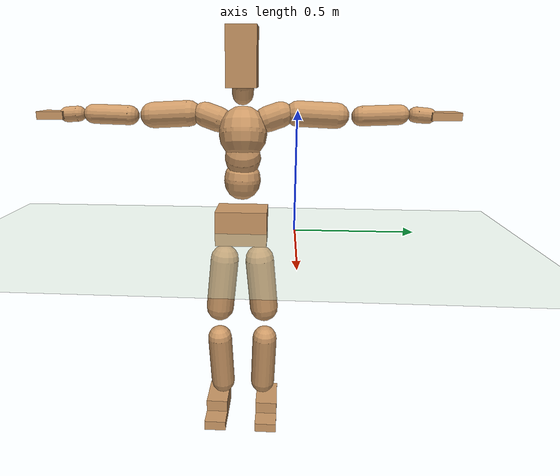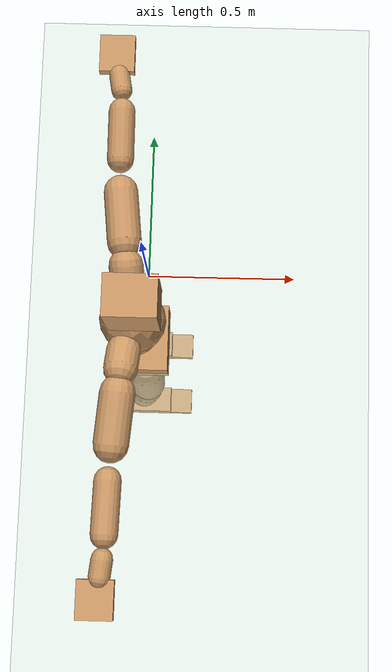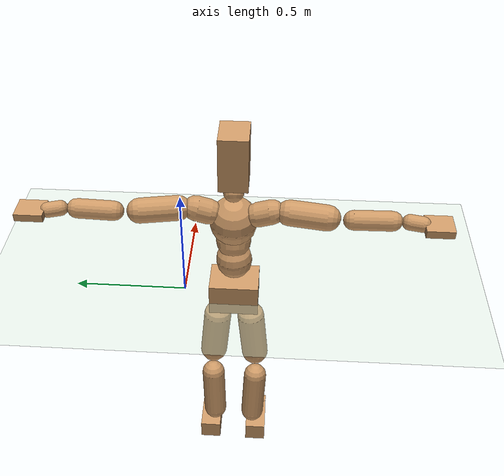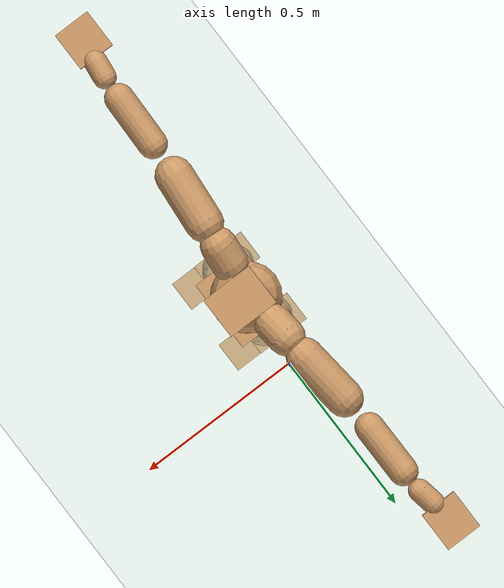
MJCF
<mujoco model="humanoid">
  <compiler coordinate="local" />
  <default>
    <joint damping="0.0" armature="0.01" stiffness="0.0" limited="true" />
    <geom conaffinity="1" condim="3" contype="7" margin="0.001" rgba="0.8 0.6 .4 1" />
  </default>
  <asset>
    <texture type="skybox" builtin="gradient" rgb1=".4 .5 .6" rgb2="0 0 0" width="100" height="100" />
    <texture builtin="flat" height="1278" mark="cross" markrgb="1 1 1" name="texgeom" random="0.01" rgb1="0.8 0.6 0.4" rgb2="0.8 0.6 0.4" type="cube" width="127" />
    <texture builtin="checker" height="100" name="texplane" rgb1="0 0 0" rgb2="0.8 0.8 0.8" type="2d" width="100" />
    <material name="MatPlane" reflectance="0.5" shininess="1" specular="1" texrepeat="60 60" texture="texplane" />
    <material name="geom" texture="texgeom" texuniform="true" />
  </asset>
  <worldbody>
    <light cutoff="100" diffuse="1 1 1" dir="-0 0 -1.3" directional="true" exponent="1" pos="0 0 1.3" specular=".1 .1 .1" />
    <geom conaffinity="1" condim="3" name="floor" pos="0 0 0" rgba="0.8 0.9 0.8 1" size="100 100 .2" type="plane" material="MatPlane" />
    <body name="Pelvis" pos="-0.002 -0.2278 0.0285">
      <freejoint name="Pelvis" />
      <geom type="box" pos="-0.0078 0.0000 -0.0122" size="0.084 0.1097 0.0739" quat="1.0000 0.0000 0.0000 0.0000" density="1000" />
      <body name="L_Hip" pos="-0.0071 0.0709 -0.0931">
        <joint name="L_Hip_x" type="hinge" pos="0 0 0" axis="1 0 0" stiffness="800" damping="80" armature="0.02" range="-180.0000 180.0000" />
        <joint name="L_Hip_y" type="hinge" pos="0 0 0" axis="0 1 0" stiffness="800" damping="80" armature="0.02" range="-180.0000 180.0000" />
        <joint name="L_Hip_z" type="hinge" pos="0 0 0" axis="0 0 1" stiffness="800" damping="80" armature="0.02" range="-180.0000 180.0000" />
        <geom type="capsule" contype="1" conaffinity="1" density="2040.816327" fromto="-0.0008 0.0072 -0.0772 -0.0031 0.0288 -0.3088" size="0.0633" />
        <body name="L_Knee" pos="-0.0039 0.036 -0.386">
          <joint name="L_Knee_x" type="hinge" pos="0 0 0" axis="1 0 0" stiffness="800" damping="80" armature="0.02" range="-180.0000 180.0000" />
          <joint name="L_Knee_y" type="hinge" pos="0 0 0" axis="0 1 0" stiffness="800" damping="80" armature="0.02" range="-180.0000 180.0000" />
          <joint name="L_Knee_z" type="hinge" pos="0 0 0" axis="0 0 1" stiffness="800" damping="80" armature="0.02" range="-180.0000 180.0000" />
          <geom type="capsule" contype="1" conaffinity="1" density="1234.567901" fromto="-0.0090 -0.0028 -0.0820 -0.0361 -0.0113 -0.3281" size="0.0556" />
          <body name="L_Ankle" pos="-0.0452 -0.0141 -0.4101">
            <joint name="L_Ankle_x" type="hinge" pos="0 0 0" axis="1 0 0" stiffness="800" damping="80" armature="0.02" range="-180.0000 180.0000" />
            <joint name="L_Ankle_y" type="hinge" pos="0 0 0" axis="0 1 0" stiffness="800" damping="80" armature="0.02" range="-180.0000 180.0000" />
            <joint name="L_Ankle_z" type="hinge" pos="0 0 0" axis="0 0 1" stiffness="800" damping="80" armature="0.02" range="-180.0000 180.0000" />
            <geom type="box" pos="0.0248 0.0239 -0.0245" size="0.0868 0.0493 0.0473" quat="1.0000 0.0000 0.0000 0.0000" density="1000" />
            <body name="L_Toe" pos="0.1219 0.0271 -0.0572">
              <joint name="L_Toe_x" type="hinge" pos="0 0 0" axis="1 0 0" stiffness="500" damping="50" armature="0.02" range="-180.0000 180.0000" />
              <joint name="L_Toe_y" type="hinge" pos="0 0 0" axis="0 1 0" stiffness="500" damping="50" armature="0.02" range="-180.0000 180.0000" />
              <joint name="L_Toe_z" type="hinge" pos="0 0 0" axis="0 0 1" stiffness="500" damping="50" armature="0.02" range="-180.0000 180.0000" />
              <geom type="box" pos="0.0254 -0.0031 0.0058" size="0.0507 0.0486 0.0204" quat="1.0000 0.0000 0.0000 0.0000" density="1000" />
            </body>
          </body>
        </body>
      </body>
      <body name="R_Hip" pos="-0.0048 -0.069 -0.0921">
        <joint name="R_Hip_x" type="hinge" pos="0 0 0" axis="1 0 0" stiffness="800" damping="80" armature="0.02" range="-180.0000 180.0000" />
        <joint name="R_Hip_y" type="hinge" pos="0 0 0" axis="0 1 0" stiffness="800" damping="80" armature="0.02" range="-180.0000 180.0000" />
        <joint name="R_Hip_z" type="hinge" pos="0 0 0" axis="0 0 1" stiffness="800" damping="80" armature="0.02" range="-180.0000 180.0000" />
        <geom type="capsule" contype="1" conaffinity="1" density="2040.816327" fromto="-0.0017 -0.0080 -0.0788 -0.0069 -0.0321 -0.3152" size="0.0623" />
        <body name="R_Knee" pos="-0.0087 -0.0401 -0.3939">
          <joint name="R_Knee_x" type="hinge" pos="0 0 0" axis="1 0 0" stiffness="800" damping="80" armature="0.02" range="-180.0000 180.0000" />
          <joint name="R_Knee_y" type="hinge" pos="0 0 0" axis="0 1 0" stiffness="800" damping="80" armature="0.02" range="-180.0000 180.0000" />
          <joint name="R_Knee_z" type="hinge" pos="0 0 0" axis="0 0 1" stiffness="800" damping="80" armature="0.02" range="-180.0000 180.0000" />
          <geom type="capsule" contype="1" conaffinity="1" density="1234.567901" fromto="-0.0088 0.0033 -0.0821 -0.0350 0.0130 -0.3285" size="0.0555" />
          <body name="R_Ankle" pos="-0.0438 0.0163 -0.4106">
            <joint name="R_Ankle_x" type="hinge" pos="0 0 0" axis="1 0 0" stiffness="800" damping="80" armature="0.02" range="-180.0000 180.0000" />
            <joint name="R_Ankle_y" type="hinge" pos="0 0 0" axis="0 1 0" stiffness="800" damping="80" armature="0.02" range="-180.0000 180.0000" />
            <joint name="R_Ankle_z" type="hinge" pos="0 0 0" axis="0 0 1" stiffness="800" damping="80" armature="0.02" range="-180.0000 180.0000" />
            <geom type="box" pos="0.0262 -0.0226 -0.0178" size="0.0882 0.049 0.0488" quat="1.0000 0.0000 0.0000 0.0000" density="1000" />
            <body name="R_Toe" pos="0.126 -0.0269 -0.0495">
              <joint name="R_Toe_x" type="hinge" pos="0 0 0" axis="1 0 0" stiffness="500" damping="50" armature="0.02" range="-180.0000 180.0000" />
              <joint name="R_Toe_y" type="hinge" pos="0 0 0" axis="0 1 0" stiffness="500" damping="50" armature="0.02" range="-180.0000 180.0000" />
              <joint name="R_Toe_z" type="hinge" pos="0 0 0" axis="0 0 1" stiffness="500" damping="50" armature="0.02" range="-180.0000 180.0000" />
              <geom type="box" pos="0.0230 0.0042 0.0049" size="0.0502 0.0485 0.022" quat="1.0000 0.0000 0.0000 0.0000" density="1000" />
            </body>
          </body>
        </body>
      </body>
      <body name="Torso" pos="-0.0278 -0.0026 0.1116">
        <joint name="Torso_x" type="hinge" pos="0 0 0" axis="1 0 0" stiffness="1000" damping="100" armature="0.02" range="-180.0000 180.0000" />
        <joint name="Torso_y" type="hinge" pos="0 0 0" axis="0 1 0" stiffness="1000" damping="100" armature="0.02" range="-180.0000 180.0000" />
        <joint name="Torso_z" type="hinge" pos="0 0 0" axis="0 0 1" stiffness="1000" damping="100" armature="0.02" range="-180.0000 180.0000" />
        <geom type="capsule" contype="1" conaffinity="1" density="2040.816327" fromto="0.0005 0.0026 0.0627 0.0006 0.0032 0.0767" size="0.0778" />
        <body name="Spine" pos="0.0011 0.0057 0.1394">
          <joint name="Spine_x" type="hinge" pos="0 0 0" axis="1 0 0" stiffness="1000" damping="100" armature="0.02" range="-180.0000 180.0000" />
          <joint name="Spine_y" type="hinge" pos="0 0 0" axis="0 1 0" stiffness="1000" damping="100" armature="0.02" range="-180.0000 180.0000" />
          <joint name="Spine_z" type="hinge" pos="0 0 0" axis="0 0 1" stiffness="1000" damping="100" armature="0.02" range="-180.0000 180.0000" />
          <geom type="capsule" contype="1" conaffinity="1" density="2040.816327" fromto="0.0115 0.0006 0.0244 0.0141 0.0008 0.0299" size="0.076" />
          <body name="Chest" pos="0.0256 0.0014 0.0543">
            <joint name="Chest_x" type="hinge" pos="0 0 0" axis="1 0 0" stiffness="1000" damping="100" armature="0.02" range="-180.0000 180.0000" />
            <joint name="Chest_y" type="hinge" pos="0 0 0" axis="0 1 0" stiffness="1000" damping="100" armature="0.02" range="-180.0000 180.0000" />
            <joint name="Chest_z" type="hinge" pos="0 0 0" axis="0 0 1" stiffness="1000" damping="100" armature="0.02" range="-180.0000 180.0000" />
            <geom type="capsule" contype="1" conaffinity="1" density="2040.816327" fromto="-0.0168 -0.0009 0.0693 -0.0205 -0.0011 0.0847" size="0.101" />
            <body name="Neck" pos="-0.0411 -0.0031 0.2178">
              <joint name="Neck_x" type="hinge" pos="0 0 0" axis="1 0 0" stiffness="500" damping="50" armature="0.02" range="-180.0000 180.0000" />
              <joint name="Neck_y" type="hinge" pos="0 0 0" axis="0 1 0" stiffness="500" damping="50" armature="0.02" range="-180.0000 180.0000" />
              <joint name="Neck_z" type="hinge" pos="0 0 0" axis="0 0 1" stiffness="500" damping="50" armature="0.02" range="-180.0000 180.0000" />
              <geom type="capsule" contype="1" conaffinity="1" density="1000" fromto="0.0105 0.0011 0.0133 0.0418 0.0044 0.0533" size="0.0441" />
              <body name="Head" pos="0.0523 0.0055 0.0667">
                <joint name="Head_x" type="hinge" pos="0 0 0" axis="1 0 0" stiffness="500" damping="50" armature="0.02" range="-180.0000 180.0000" />
                <joint name="Head_y" type="hinge" pos="0 0 0" axis="0 1 0" stiffness="500" damping="50" armature="0.02" range="-180.0000 180.0000" />
                <joint name="Head_z" type="hinge" pos="0 0 0" axis="0 0 1" stiffness="500" damping="50" armature="0.02" range="-180.0000 180.0000" />
                <geom type="box" pos="-0.0117 -0.0043 0.0885" size="0.0767 0.0612 0.1165" quat="1.0000 0.0000 0.0000 0.0000" density="1000" />

              </body>
            </body>
            <body name="L_Thorax" pos="-0.033 0.08 0.1236">
              <joint name="L_Thorax_x" type="hinge" pos="0 0 0" axis="1 0 0" stiffness="500" damping="50" armature="0.02" range="-180.0000 180.0000" />
              <joint name="L_Thorax_y" type="hinge" pos="0 0 0" axis="0 1 0" stiffness="500" damping="50" armature="0.02" range="-180.0000 180.0000" />
              <joint name="L_Thorax_z" type="hinge" pos="0 0 0" axis="0 0 1" stiffness="500" damping="50" armature="0.02" range="-180.0000 180.0000" />
              <geom type="capsule" contype="1" conaffinity="1" density="1000" fromto="-0.0018 0.0185 0.0063 -0.0073 0.0739 0.0252" size="0.0531" />
              <body name="L_Shoulder" pos="-0.0091 0.0924 0.0315">
                <joint name="L_Shoulder_x" type="hinge" pos="0 0 0" axis="1 0 0" stiffness="500" damping="50" armature="0.02" range="-720.0000 720.0000" />
                <joint name="L_Shoulder_y" type="hinge" pos="0 0 0" axis="0 1 0" stiffness="500" damping="50" armature="0.02" range="-720.0000 720.0000" />
                <joint name="L_Shoulder_z" type="hinge" pos="0 0 0" axis="0 0 1" stiffness="500" damping="50" armature="0.02" range="-720.0000 720.0000" />
                <geom type="capsule" contype="1" conaffinity="1" density="1000" fromto="-0.0057 0.0530 -0.0029 -0.0228 0.2121 -0.0116" size="0.0529" />
                <body name="L_Elbow" pos="-0.0285 0.2652 -0.0145">
                  <joint name="L_Elbow_x" type="hinge" pos="0 0 0" axis="1 0 0" stiffness="500" damping="50" armature="0.02" range="-720.0000 720.0000" />
                  <joint name="L_Elbow_y" type="hinge" pos="0 0 0" axis="0 1 0" stiffness="500" damping="50" armature="0.02" range="-720.0000 720.0000" />
                  <joint name="L_Elbow_z" type="hinge" pos="0 0 0" axis="0 0 1" stiffness="500" damping="50" armature="0.02" range="-720.0000 720.0000" />
                  <geom type="capsule" contype="1" conaffinity="1" density="1000" fromto="-0.0002 0.0512 0.0019 -0.0007 0.2046 0.0077" size="0.0413" />
                  <body name="L_Wrist" pos="-0.0009 0.2558 0.0096">
                    <joint name="L_Wrist_x" type="hinge" pos="0 0 0" axis="1 0 0" stiffness="300" damping="30" armature="0.02" range="-180.0000 180.0000" />
                    <joint name="L_Wrist_y" type="hinge" pos="0 0 0" axis="0 1 0" stiffness="300" damping="30" armature="0.02" range="-180.0000 180.0000" />
                    <joint name="L_Wrist_z" type="hinge" pos="0 0 0" axis="0 0 1" stiffness="300" damping="30" armature="0.02" range="-180.0000 180.0000" />
                    <geom type="capsule" contype="1" conaffinity="1" density="1000" fromto="-0.0031 0.0171 -0.0016 -0.0123 0.0685 -0.0066" size="0.0324" />
                    <body name="L_Hand" pos="-0.0153 0.0857 -0.0082">
                      <joint name="L_Hand_x" type="hinge" pos="0 0 0" axis="1 0 0" stiffness="300" damping="30" armature="0.02" range="-180.0000 180.0000" />
                      <joint name="L_Hand_y" type="hinge" pos="0 0 0" axis="0 1 0" stiffness="300" damping="30" armature="0.02" range="-180.0000 180.0000" />
                      <joint name="L_Hand_z" type="hinge" pos="0 0 0" axis="0 0 1" stiffness="300" damping="30" armature="0.02" range="-180.0000 180.0000" />
                      <geom type="box" pos="-0.0058 0.0502 0.0010" size="0.0548 0.0595 0.0161" quat="1.0000 0.0000 0.0000 0.0000" density="1000" />
                    </body>
                  </body>
                </body>
              </body>
            </body>
            <body name="R_Thorax" pos="-0.0378 -0.0829 0.1204">
              <joint name="R_Thorax_x" type="hinge" pos="0 0 0" axis="1 0 0" stiffness="500" damping="50" armature="0.02" range="-180.0000 180.0000" />
              <joint name="R_Thorax_y" type="hinge" pos="0 0 0" axis="0 1 0" stiffness="500" damping="50" armature="0.02" range="-180.0000 180.0000" />
              <joint name="R_Thorax_z" type="hinge" pos="0 0 0" axis="0 0 1" stiffness="500" damping="50" armature="0.02" range="-180.0000 180.0000" />
              <geom type="capsule" contype="1" conaffinity="1" density="1000" fromto="-0.0018 -0.0195 0.0067 -0.0072 -0.0780 0.0269" size="0.052" />
              <body name="R_Shoulder" pos="-0.0091 -0.0975 0.0336">
                <joint name="R_Shoulder_x" type="hinge" pos="0 0 0" axis="1 0 0" stiffness="500" damping="50" armature="0.02" range="-720.0000 720.0000" />
                <joint name="R_Shoulder_y" type="hinge" pos="0 0 0" axis="0 1 0" stiffness="500" damping="50" armature="0.02" range="-720.0000 720.0000" />
                <joint name="R_Shoulder_z" type="hinge" pos="0 0 0" axis="0 0 1" stiffness="500" damping="50" armature="0.02" range="-720.0000 720.0000" />
                <geom type="capsule" contype="1" conaffinity="1" density="1000" fromto="-0.0045 -0.0518 -0.0029 -0.0182 -0.2072 -0.0116" size="0.0542" />
                <body name="R_Elbow" pos="-0.0227 -0.259 -0.0144">
                  <joint name="R_Elbow_x" type="hinge" pos="0 0 0" axis="1 0 0" stiffness="500" damping="50" armature="0.02" range="-720.0000 720.0000" />
                  <joint name="R_Elbow_y" type="hinge" pos="0 0 0" axis="0 1 0" stiffness="500" damping="50" armature="0.02" range="-720.0000 720.0000" />
                  <joint name="R_Elbow_z" type="hinge" pos="0 0 0" axis="0 0 1" stiffness="500" damping="50" armature="0.02" range="-720.0000 720.0000" />
                  <geom type="capsule" contype="1" conaffinity="1" density="1000" fromto="-0.0011 -0.0522 0.0015 -0.0046 -0.2089 0.0061" size="0.0415" />
                  <body name="R_Wrist" pos="-0.0057 -0.2611 0.0076">
                    <joint name="R_Wrist_x" type="hinge" pos="0 0 0" axis="1 0 0" stiffness="300" damping="30" armature="0.02" range="-180.0000 180.0000" />
                    <joint name="R_Wrist_y" type="hinge" pos="0 0 0" axis="0 1 0" stiffness="300" damping="30" armature="0.02" range="-180.0000 180.0000" />
                    <joint name="R_Wrist_z" type="hinge" pos="0 0 0" axis="0 0 1" stiffness="300" damping="30" armature="0.02" range="-180.0000 180.0000" />
                    <geom type="capsule" contype="1" conaffinity="1" density="1000" fromto="-0.0021 -0.0172 -0.0012 -0.0083 -0.0687 -0.0049" size="0.033" />
                    <body name="R_Hand" pos="-0.0104 -0.0859 -0.0061">
                      <joint name="R_Hand_x" type="hinge" pos="0 0 0" axis="1 0 0" stiffness="300" damping="30" armature="0.02" range="-180.0000 180.0000" />
                      <joint name="R_Hand_y" type="hinge" pos="0 0 0" axis="0 1 0" stiffness="300" damping="30" armature="0.02" range="-180.0000 180.0000" />
                      <joint name="R_Hand_z" type="hinge" pos="0 0 0" axis="0 0 1" stiffness="300" damping="30" armature="0.02" range="-180.0000 180.0000" />
                      <geom type="box" pos="-0.0080 -0.0468 -0.0009" size="0.0553 0.0577 0.0166" quat="1.0000 0.0000 0.0000 0.0000" density="1000" />
                    </body>
                  </body>
                </body>
              </body>
            </body>
          </body>
        </body>
      </body>
    </body>
  </worldbody>
  <actuator>
    <motor name="L_Hip_x" joint="L_Hip_x" gear="500" />
    <motor name="L_Hip_y" joint="L_Hip_y" gear="500" />
    <motor name="L_Hip_z" joint="L_Hip_z" gear="500" />
    <motor name="L_Knee_x" joint="L_Knee_x" gear="500" />
    <motor name="L_Knee_y" joint="L_Knee_y" gear="500" />
    <motor name="L_Knee_z" joint="L_Knee_z" gear="500" />
    <motor name="L_Ankle_x" joint="L_Ankle_x" gear="500" />
    <motor name="L_Ankle_y" joint="L_Ankle_y" gear="500" />
    <motor name="L_Ankle_z" joint="L_Ankle_z" gear="500" />
    <motor name="L_Toe_x" joint="L_Toe_x" gear="500" />
    <motor name="L_Toe_y" joint="L_Toe_y" gear="500" />
    <motor name="L_Toe_z" joint="L_Toe_z" gear="500" />
    <motor name="R_Hip_x" joint="R_Hip_x" gear="500" />
    <motor name="R_Hip_y" joint="R_Hip_y" gear="500" />
    <motor name="R_Hip_z" joint="R_Hip_z" gear="500" />
    <motor name="R_Knee_x" joint="R_Knee_x" gear="500" />
    <motor name="R_Knee_y" joint="R_Knee_y" gear="500" />
    <motor name="R_Knee_z" joint="R_Knee_z" gear="500" />
    <motor name="R_Ankle_x" joint="R_Ankle_x" gear="500" />
    <motor name="R_Ankle_y" joint="R_Ankle_y" gear="500" />
    <motor name="R_Ankle_z" joint="R_Ankle_z" gear="500" />
    <motor name="R_Toe_x" joint="R_Toe_x" gear="500" />
    <motor name="R_Toe_y" joint="R_Toe_y" gear="500" />
    <motor name="R_Toe_z" joint="R_Toe_z" gear="500" />
    <motor name="Torso_x" joint="Torso_x" gear="500" />
    <motor name="Torso_y" joint="Torso_y" gear="500" />
    <motor name="Torso_z" joint="Torso_z" gear="500" />
    <motor name="Spine_x" joint="Spine_x" gear="500" />
    <motor name="Spine_y" joint="Spine_y" gear="500" />
    <motor name="Spine_z" joint="Spine_z" gear="500" />
    <motor name="Chest_x" joint="Chest_x" gear="500" />
    <motor name="Chest_y" joint="Chest_y" gear="500" />
    <motor name="Chest_z" joint="Chest_z" gear="500" />
    <motor name="Neck_x" joint="Neck_x" gear="500" />
    <motor name="Neck_y" joint="Neck_y" gear="500" />
    <motor name="Neck_z" joint="Neck_z" gear="500" />
    <motor name="Head_x" joint="Head_x" gear="500" />
    <motor name="Head_y" joint="Head_y" gear="500" />
    <motor name="Head_z" joint="Head_z" gear="500" />
    <motor name="L_Thorax_x" joint="L_Thorax_x" gear="500" />
    <motor name="L_Thorax_y" joint="L_Thorax_y" gear="500" />
    <motor name="L_Thorax_z" joint="L_Thorax_z" gear="500" />
    <motor name="L_Shoulder_x" joint="L_Shoulder_x" gear="500" />
    <motor name="L_Shoulder_y" joint="L_Shoulder_y" gear="500" />
    <motor name="L_Shoulder_z" joint="L_Shoulder_z" gear="500" />
    <motor name="L_Elbow_x" joint="L_Elbow_x" gear="500" />
    <motor name="L_Elbow_y" joint="L_Elbow_y" gear="500" />
    <motor name="L_Elbow_z" joint="L_Elbow_z" gear="500" />
    <motor name="L_Wrist_x" joint="L_Wrist_x" gear="500" />
    <motor name="L_Wrist_y" joint="L_Wrist_y" gear="500" />
    <motor name="L_Wrist_z" joint="L_Wrist_z" gear="500" />
    <motor name="L_Hand_x" joint="L_Hand_x" gear="500" />
    <motor name="L_Hand_y" joint="L_Hand_y" gear="500" />
    <motor name="L_Hand_z" joint="L_Hand_z" gear="500" />
    <motor name="R_Thorax_x" joint="R_Thorax_x" gear="500" />
    <motor name="R_Thorax_y" joint="R_Thorax_y" gear="500" />
    <motor name="R_Thorax_z" joint="R_Thorax_z" gear="500" />
    <motor name="R_Shoulder_x" joint="R_Shoulder_x" gear="500" />
    <motor name="R_Shoulder_y" joint="R_Shoulder_y" gear="500" />
    <motor name="R_Shoulder_z" joint="R_Shoulder_z" gear="500" />
    <motor name="R_Elbow_x" joint="R_Elbow_x" gear="500" />
    <motor name="R_Elbow_y" joint="R_Elbow_y" gear="500" />
    <motor name="R_Elbow_z" joint="R_Elbow_z" gear="500" />
    <motor name="R_Wrist_x" joint="R_Wrist_x" gear="500" />
    <motor name="R_Wrist_y" joint="R_Wrist_y" gear="500" />
    <motor name="R_Wrist_z" joint="R_Wrist_z" gear="500" />
    <motor name="R_Hand_x" joint="R_Hand_x" gear="500" />
    <motor name="R_Hand_y" joint="R_Hand_y" gear="500" />
    <motor name="R_Hand_z" joint="R_Hand_z" gear="500" />
  </actuator>
  <contact>
    <exclude body1="Torso" body2="Chest" />
    <exclude body1="Head" body2="Chest" />
    <exclude body1="R_Knee" body2="R_Toe" />
    <exclude body1="R_Knee" body2="L_Ankle" />
    <exclude body1="R_Knee" body2="L_Toe" />
    <exclude body1="L_Knee" body2="L_Toe" />
    <exclude body1="L_Knee" body2="R_Ankle" />
    <exclude body1="L_Knee" body2="R_Toe" />
    <exclude body1="L_Shoulder" body2="Chest" />
    <exclude body1="R_Shoulder" body2="Chest" />
  </contact>
  <sensor />
  <size njmax="700" nconmax="700" />
</mujoco>
